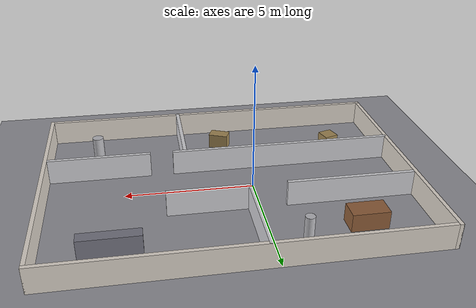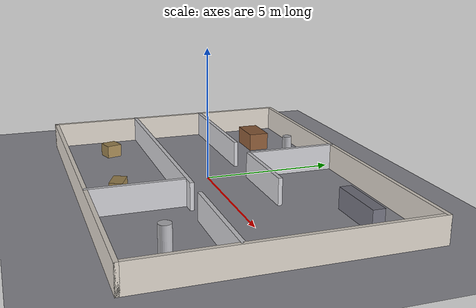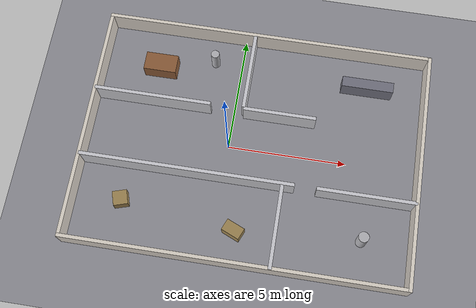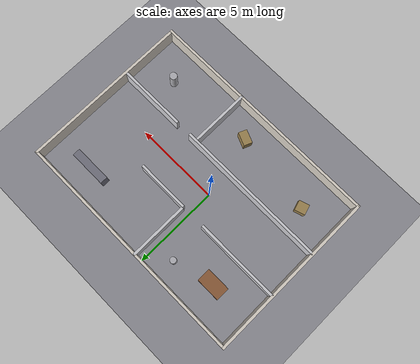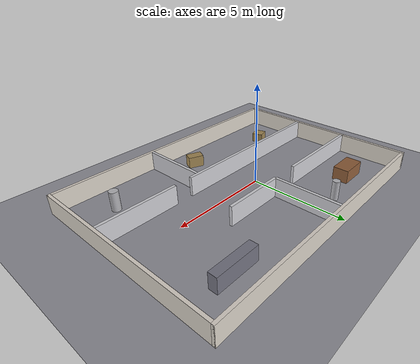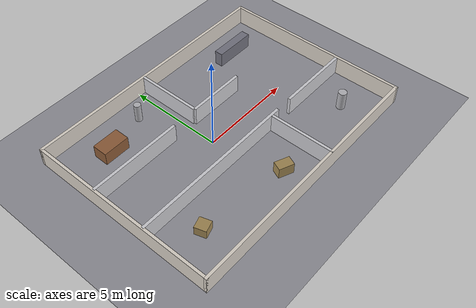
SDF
<?xml version="1.0" ?>
<sdf version="1.10">
  <world name="astro_indoor">

    <physics name="1ms" type="ignored">
      <max_step_size>0.001</max_step_size>
      <real_time_factor>1.0</real_time_factor>
    </physics>

    <plugin filename="gz-sim-physics-system"
            name="gz::sim::systems::Physics"/>
    <plugin filename="gz-sim-user-commands-system"
            name="gz::sim::systems::UserCommands"/>
    <plugin filename="gz-sim-scene-broadcaster-system"
            name="gz::sim::systems::SceneBroadcaster"/>
    <!-- gpu_lidar ve camera bu sistem olmadan veri üretmez -->
    <plugin filename="gz-sim-sensors-system"
            name="gz::sim::systems::Sensors">
      <render_engine>ogre2</render_engine>
    </plugin>
    <!-- imu sensörü için ayrı sistem -->
    <plugin filename="gz-sim-imu-system"
            name="gz::sim::systems::Imu"/>
    <plugin filename="gz-sim-contact-system"
            name="gz::sim::systems::Contact"/>

    <gravity>0 0 -9.8</gravity>

    <scene>
      <ambient>0.6 0.6 0.6 1</ambient>
      <background>0.75 0.82 0.88 1</background>
      <shadows>true</shadows>
      <grid>false</grid>
    </scene>

    <light type="directional" name="sun">
      <cast_shadows>true</cast_shadows>
      <pose>0 0 10 0 0 0</pose>
      <diffuse>0.9 0.9 0.9 1</diffuse>
      <specular>0.2 0.2 0.2 1</specular>
      <direction>-0.4 0.3 -0.9</direction>
    </light>

    <!-- ═══════════════════════ Zemin ═══════════════════════ -->
    <model name="ground_plane">
      <static>true</static>
      <link name="link">
        <collision name="collision">
          <geometry><plane><normal>0 0 1</normal><size>60 60</size></plane></geometry>
          <surface>
            <friction><ode><mu>1.0</mu><mu2>1.0</mu2></ode></friction>
          </surface>
        </collision>
        <visual name="visual">
          <geometry><plane><normal>0 0 1</normal><size>60 60</size></plane></geometry>
          <material>
            <ambient>0.45 0.45 0.47 1</ambient>
            <diffuse>0.55 0.55 0.58 1</diffuse>
          </material>
        </visual>
      </link>
    </model>

    <model name="walls">
      <static>true</static>
      <link name="link">

        <!-- Dış çevre: kuzey / güney / batı / doğu -->
        <collision name="c_north"><pose>1 5 0.5 0 0 0</pose>
          <geometry><box><size>14.15 0.15 1.0</size></box></geometry></collision>
        <visual name="v_north"><pose>1 5 0.5 0 0 0</pose>
          <geometry><box><size>14.15 0.15 1.0</size></box></geometry>
          <material><ambient>0.75 0.72 0.68 1</ambient><diffuse>0.85 0.82 0.78 1</diffuse></material></visual>

        <collision name="c_south"><pose>1 -5 0.5 0 0 0</pose>
          <geometry><box><size>14.15 0.15 1.0</size></box></geometry></collision>
        <visual name="v_south"><pose>1 -5 0.5 0 0 0</pose>
          <geometry><box><size>14.15 0.15 1.0</size></box></geometry>
          <material><ambient>0.75 0.72 0.68 1</ambient><diffuse>0.85 0.82 0.78 1</diffuse></material></visual>

        <collision name="c_west"><pose>-6 0 0.5 0 0 0</pose>
          <geometry><box><size>0.15 10.15 1.0</size></box></geometry></collision>
        <visual name="v_west"><pose>-6 0 0.5 0 0 0</pose>
          <geometry><box><size>0.15 10.15 1.0</size></box></geometry>
          <material><ambient>0.75 0.72 0.68 1</ambient><diffuse>0.85 0.82 0.78 1</diffuse></material></visual>

        <collision name="c_east"><pose>8 0 0.5 0 0 0</pose>
          <geometry><box><size>0.15 10.15 1.0</size></box></geometry></collision>
        <visual name="v_east"><pose>8 0 0.5 0 0 0</pose>
          <geometry><box><size>0.15 10.15 1.0</size></box></geometry>
          <material><ambient>0.75 0.72 0.68 1</ambient><diffuse>0.85 0.82 0.78 1</diffuse></material></visual>

        <!-- Koridorun kuzey duvarı: -6..-1 ve 0.9 m kapı, sonra 0..3 -->
        <collision name="c_corr_n1"><pose>-3.5 1.5 0.5 0 0 0</pose>
          <geometry><box><size>5.0 0.15 1.0</size></box></geometry></collision>
        <visual name="v_corr_n1"><pose>-3.5 1.5 0.5 0 0 0</pose>
          <geometry><box><size>5.0 0.15 1.0</size></box></geometry>
          <material><ambient>0.7 0.7 0.72 1</ambient><diffuse>0.8 0.8 0.82 1</diffuse></material></visual>

        <collision name="c_corr_n2"><pose>1.95 1.5 0.5 0 0 0</pose>
          <geometry><box><size>3.1 0.15 1.0</size></box></geometry></collision>
        <visual name="v_corr_n2"><pose>1.95 1.5 0.5 0 0 0</pose>
          <geometry><box><size>3.1 0.15 1.0</size></box></geometry>
          <material><ambient>0.7 0.7 0.72 1</ambient><diffuse>0.8 0.8 0.82 1</diffuse></material></visual>

        <!-- ODA A ile ODA B arası bölme -->
        <collision name="c_ab"><pose>0.4 3.3 0.5 0 0 0</pose>
          <geometry><box><size>0.15 3.5 1.0</size></box></geometry></collision>
        <visual name="v_ab"><pose>0.4 3.3 0.5 0 0 0</pose>
          <geometry><box><size>0.15 3.5 1.0</size></box></geometry>
          <material><ambient>0.7 0.7 0.72 1</ambient><diffuse>0.8 0.8 0.82 1</diffuse></material></visual>

        <!-- Koridorun güney duvarı: kapı 3.0..3.9 -->
        <collision name="c_corr_s1"><pose>-1.5 -1.5 0.5 0 0 0</pose>
          <geometry><box><size>9.0 0.15 1.0</size></box></geometry></collision>
        <visual name="v_corr_s1"><pose>-1.5 -1.5 0.5 0 0 0</pose>
          <geometry><box><size>9.0 0.15 1.0</size></box></geometry>
          <material><ambient>0.7 0.7 0.72 1</ambient><diffuse>0.8 0.8 0.82 1</diffuse></material></visual>

        <collision name="c_corr_s2"><pose>5.95 -1.5 0.5 0 0 0</pose>
          <geometry><box><size>4.1 0.15 1.0</size></box></geometry></collision>
        <visual name="v_corr_s2"><pose>5.95 -1.5 0.5 0 0 0</pose>
          <geometry><box><size>4.1 0.15 1.0</size></box></geometry>
          <material><ambient>0.7 0.7 0.72 1</ambient><diffuse>0.8 0.8 0.82 1</diffuse></material></visual>

        <!-- ODA C'nin doğu duvarı -->
        <collision name="c_c_east"><pose>2.5 -3.3 0.5 0 0 0</pose>
          <geometry><box><size>0.15 3.5 1.0</size></box></geometry></collision>
        <visual name="v_c_east"><pose>2.5 -3.3 0.5 0 0 0</pose>
          <geometry><box><size>0.15 3.5 1.0</size></box></geometry>
          <material><ambient>0.7 0.7 0.72 1</ambient><diffuse>0.8 0.8 0.82 1</diffuse></material></visual>

      </link>
    </model>

    <!-- ═══════════════ Mobilya (tarama eşleştirmeye doku katar) ═══════════════ -->
    <model name="furniture">
      <static>true</static>
      <link name="link">
        <!-- ODA A: masa + iki silindir -->
        <collision name="c_table_a"><pose>-3.5 3.2 0.35 0 0 0</pose>
          <geometry><box><size>1.4 0.8 0.7</size></box></geometry></collision>
        <visual name="v_table_a"><pose>-3.5 3.2 0.35 0 0 0</pose>
          <geometry><box><size>1.4 0.8 0.7</size></box></geometry>
          <material><ambient>0.45 0.30 0.18 1</ambient><diffuse>0.55 0.36 0.22 1</diffuse></material></visual>

        <collision name="c_pillar_a"><pose>-1.2 3.8 0.5 0 0 0</pose>
          <geometry><cylinder><radius>0.18</radius><length>1.0</length></cylinder></geometry></collision>
        <visual name="v_pillar_a"><pose>-1.2 3.8 0.5 0 0 0</pose>
          <geometry><cylinder><radius>0.18</radius><length>1.0</length></cylinder></geometry>
          <material><ambient>0.6 0.6 0.62 1</ambient><diffuse>0.7 0.7 0.72 1</diffuse></material></visual>

        <!-- ODA B: raf -->
        <collision name="c_shelf_b"><pose>5.5 3.5 0.4 0 0 0</pose>
          <geometry><box><size>2.2 0.45 0.8</size></box></geometry></collision>
        <visual name="v_shelf_b"><pose>5.5 3.5 0.4 0 0 0</pose>
          <geometry><box><size>2.2 0.45 0.8</size></box></geometry>
          <material><ambient>0.35 0.35 0.40 1</ambient><diffuse>0.45 0.45 0.50 1</diffuse></material></visual>

        <!-- ODA C: iki kutu -->
        <collision name="c_box_c1"><pose>-4.0 -3.0 0.25 0 0 0.3</pose>
          <geometry><box><size>0.6 0.6 0.5</size></box></geometry></collision>
        <visual name="v_box_c1"><pose>-4.0 -3.0 0.25 0 0 0.3</pose>
          <geometry><box><size>0.6 0.6 0.5</size></box></geometry>
          <material><ambient>0.5 0.42 0.25 1</ambient><diffuse>0.62 0.52 0.32 1</diffuse></material></visual>

        <collision name="c_box_c2"><pose>0.8 -3.6 0.3 0 0 -0.4</pose>
          <geometry><box><size>0.8 0.5 0.6</size></box></geometry></collision>
        <visual name="v_box_c2"><pose>0.8 -3.6 0.3 0 0 -0.4</pose>
          <geometry><box><size>0.8 0.5 0.6</size></box></geometry>
          <material><ambient>0.5 0.42 0.25 1</ambient><diffuse>0.62 0.52 0.32 1</diffuse></material></visual>

        <!-- Açık alan: sütun -->
        <collision name="c_pillar_e"><pose>6.0 -3.2 0.5 0 0 0</pose>
          <geometry><cylinder><radius>0.22</radius><length>1.0</length></cylinder></geometry></collision>
        <visual name="v_pillar_e"><pose>6.0 -3.2 0.5 0 0 0</pose>
          <geometry><cylinder><radius>0.22</radius><length>1.0</length></cylinder></geometry>
          <material><ambient>0.6 0.6 0.62 1</ambient><diffuse>0.7 0.7 0.72 1</diffuse></material></visual>
      </link>
    </model>

  </world>
</sdf>
